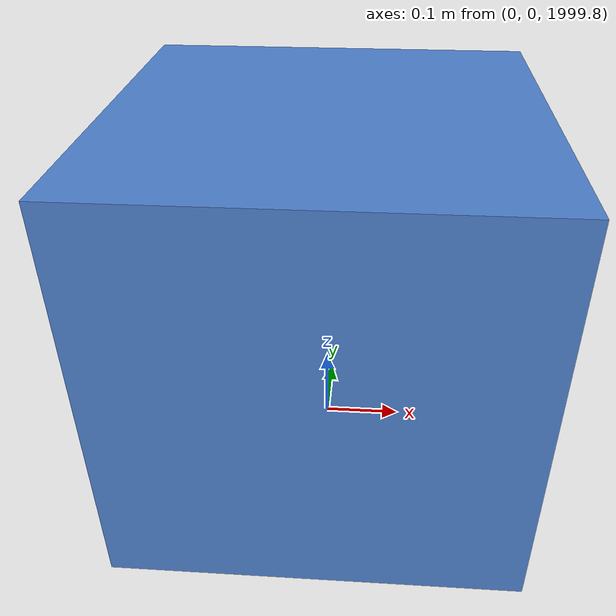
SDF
<?xml version="1.0"?>
<sdf version="1.9">
  <world name="falling_box_world">
    <physics name="1ms" type="ignored">
      <max_step_size>0.001</max_step_size>
      <real_time_factor>1.0</real_time_factor>
    </physics>

    <plugin filename="gz-sim-physics-system" name="gz::sim::systems::Physics"/>
    <plugin filename="gz-sim-air-pressure-system" name="gz::sim::systems::AirPressure"/>
    <plugin filename="gz-sim-altimeter-system" name="gz::sim::systems::Altimeter"/>
    <plugin filename="gz-sim-scene-broadcaster-system" name="gz::sim::systems::SceneBroadcaster"/>
    <plugin filename="gz-sim-user-commands-system" name="gz::sim::systems::UserCommands"/>

    <light type="directional" name="sun">
      <cast_shadows>true</cast_shadows>
      <pose>0 0 10 0 0 0</pose>
      <diffuse>0.8 0.8 0.8 1</diffuse>
      <specular>0.2 0.2 0.2 1</specular>
      <attenuation>
        <range>1000</range>
        <constant>0.9</constant>
        <linear>0.01</linear>
        <quadratic>0.001</quadratic>
      </attenuation>
      <direction>-0.5 0.1 -0.9</direction>
    </light>

    <model name="ground_plane">
      <static>true</static>
      <link name="link">
        <collision name="collision">
          <geometry><plane><normal>0 0 1</normal><size>100 100</size></plane></geometry>
        </collision>
        <visual name="visual">
          <geometry><plane><normal>0 0 1</normal><size>100 100</size></plane></geometry>
          <material>
            <ambient>0.8 0.8 0.8 1</ambient>
            <diffuse>0.8 0.8 0.8 1</diffuse>
            <specular>0.8 0.8 0.8 1</specular>
          </material>
        </visual>
      </link>
    </model>

    <model name="falling_box">
      <pose>0 0 2000 0 0 0</pose>
      <link name="link">
        <inertial>
          <mass>1.0</mass>
          <inertia>
            <ixx>0.0417</ixx><iyy>0.0417</iyy><izz>0.0417</izz>
          </inertia>
        </inertial>
        <collision name="collision">
          <geometry><box><size>0.5 0.5 0.5</size></box></geometry>
        </collision>
        <visual name="visual">
          <geometry><box><size>0.5 0.5 0.5</size></box></geometry>
          <material>
            <ambient>0.3 0.5 0.8 1</ambient>
            <diffuse>0.3 0.5 0.8 1</diffuse>
            <specular>0.5 0.5 0.5 1</specular>
          </material>
        </visual>
        <sensor name="barometer" type="air_pressure">
          <always_on>1</always_on>
          <update_rate>30</update_rate>
          <topic>air_pressure</topic>
          <air_pressure>
            <reference_altitude>0</reference_altitude>
          </air_pressure>
        </sensor>
        <sensor name="altimeter" type="altimeter">
          <always_on>1</always_on>
          <update_rate>30</update_rate>
          <topic>altimeter</topic>
        </sensor>
      </link>
    </model>
  </world>
</sdf>
